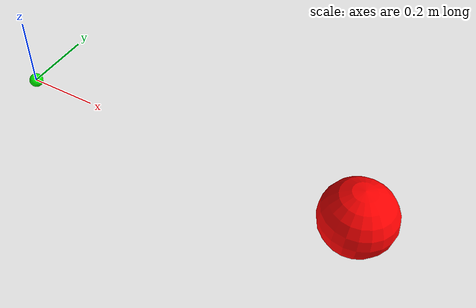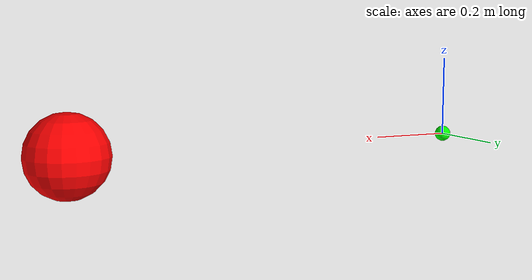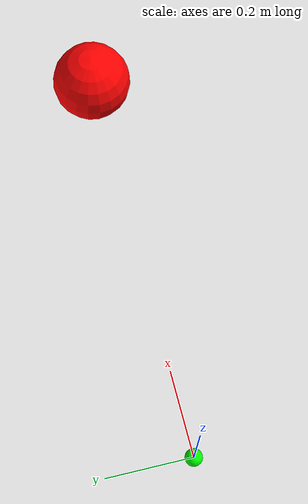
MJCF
<mujoco model="point_mass">
    <option timestep="0.01" />
    <option gravity="0 0 -9.81"/>
      <asset>
        <texture name="grid" type="2d" builtin="checker" rgb1=".1 .2 .3"
         rgb2=".2 .3 .4" width="300" height="300"/>
        <material name="grid" texture="grid" texrepeat="8 8" reflectance="0"/>
      </asset>

    <worldbody>
        <body name="point_mass" pos="1 0 0" >
            <joint name="joint_1" type="slide" axis="1 0 0"/>  <!-- Translational joint along x-axis -->
            <joint name="joint_2" type="slide" axis="0 1 0"/>  <!-- Translational joint along y-axis -->
            <joint name="joint_3" type="slide" axis="0 0 1"/>  <!-- Translational joint along z-axis -->
            <geom type="sphere" size="0.1" mass="0.1" rgba="255.0 0.0 0.0 1.0"/> <!-- Visual representation -->
        </body>
        <site name="target_state" pos="0 0 0" size="0.02" type="sphere" rgba="0 1 0 1"/>
    </worldbody>
    <actuator>
        <motor joint="joint_1" ctrlrange="-10 10" ctrllimited="true"/>
        <motor joint="joint_2" ctrlrange="-10 10" ctrllimited="true"/>
        <motor joint="joint_3" ctrlrange="-10 10" ctrllimited="true"/>
    </actuator>
</mujoco>
